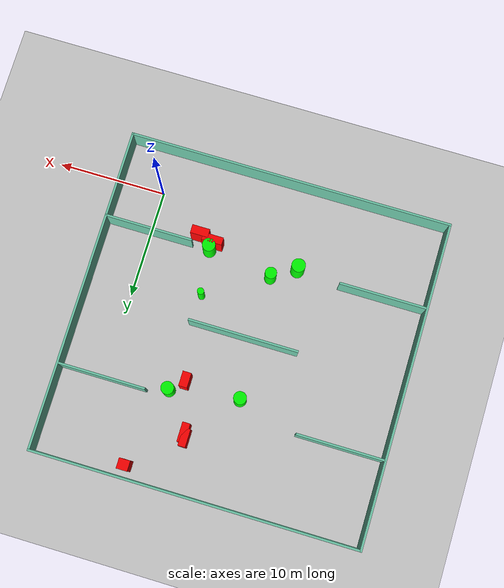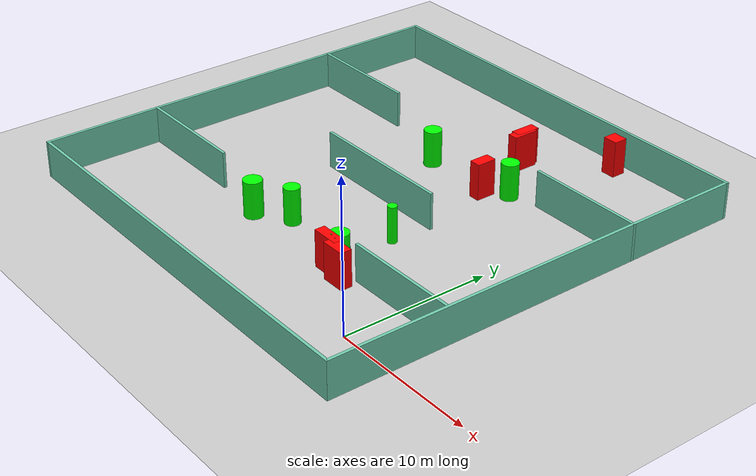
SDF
<sdf version="1.7">
 <world name="default">
  <light name="sun" type="directional">
   <pose>0 0 10 0 -0 0</pose>
   <diffuse>0.8 0.8 0.8 1</diffuse>
   <specular>0.2 0.2 0.2 1</specular>
   <attenuation>
    <range>1000</range>
    <constant>0.9</constant>
    <linear>0.01</linear>
    <quadratic>0.001</quadratic>
   </attenuation>
   <direction>-0.5 0.1 -0.9</direction>
   <spot><inner_angle>0</inner_angle><outer_angle>0</outer_angle><falloff>0</falloff></spot>
  </light>
  <model name="ground_plane">
   <static>1</static>
   <link name="link">
    <collision name="collision">
     <geometry><plane><normal>0 0 1</normal><size>100 100</size></plane></geometry>
     <surface>
      <contact><collide_bitmask>65535</collide_bitmask></contact>
      <friction><ode><mu>100</mu><mu2>50</mu2></ode></friction>
     </surface>
    </collision>
    <visual name="visual">
     <cast_shadows>0</cast_shadows>
     <geometry><plane><normal>0 0 1</normal><size>100 100</size></plane></geometry>
     <material>
      <script><uri>file://media/materials/scripts/gazebo.material</uri><name>Gazebo/Grey</name></script>
     </material>
    </visual>
   </link>
  </model>
  <gravity>0 0 -9.8</gravity>
  <magnetic_field>6e-06 2.3e-05 -4.2e-05</magnetic_field>
  <atmosphere type="adiabatic"/>
  <physics type="ode">
   <max_step_size>0.001</max_step_size>
   <real_time_factor>1</real_time_factor>
   <real_time_update_rate>1000</real_time_update_rate>
  </physics>
  <scene><ambient>0.4 0.4 0.4 1</ambient><background>0.7 0.7 0.7 1</background><shadows>1</shadows></scene>
  <spherical_coordinates>
   <surface_model>EARTH_WGS84</surface_model>
   <latitude_deg>0</latitude_deg>
   <longitude_deg>0</longitude_deg>
   <elevation>0</elevation>
   <heading_deg>0</heading_deg>
  </spherical_coordinates>
  <model name="my_base_walls">
   <link name="Wall_10">
    <collision name="Wall_10_Collision">
     <geometry><box><size>8.2 0.2 2.5</size></box></geometry>
     <pose>0 0 1.25 0 -0 0</pose>
    </collision>
    <visual name="Wall_10_Visual">
     <pose>0 0 1.25 0 -0 0</pose>
     <geometry><box><size>8.2 0.2 2.5</size></box></geometry>
     <material>
      <script><uri>file://media/materials/scripts/gazebo.material</uri><name>Gazebo/Grey</name></script>
      <ambient>0.435294 0.796078 0.67451 1</ambient>
     </material>
     <meta><layer>0</layer></meta>
    </visual>
    <pose>-11 -7 0 0 -0 0</pose>
   </link>
   <link name="Wall_12">
    <collision name="Wall_12_Collision">
     <geometry><box><size>8.2 0.2 2.5</size></box></geometry>
     <pose>0 0 1.25 0 -0 0</pose>
    </collision>
    <visual name="Wall_12_Visual">
     <pose>0 0 1.25 0 -0 0</pose>
     <geometry><box><size>8.2 0.2 2.5</size></box></geometry>
     <material>
      <script><uri>file://media/materials/scripts/gazebo.material</uri><name>Gazebo/Grey</name></script>
      <ambient>0.435294 0.796078 0.67451 1</ambient>
     </material>
     <meta><layer>0</layer></meta>
    </visual>
    <pose>-11 7 0 0 -0 0</pose>
   </link>
   <link name="Wall_14">
    <collision name="Wall_14_Collision">
     <geometry><box><size>8.2 0.2 2.5</size></box></geometry>
     <pose>0 0 1.25 0 -0 0</pose>
    </collision>
    <visual name="Wall_14_Visual">
     <pose>0 0 1.25 0 -0 0</pose>
     <geometry><box><size>8.2 0.2 2.5</size></box></geometry>
     <material>
      <script><uri>file://media/materials/scripts/gazebo.material</uri><name>Gazebo/Grey</name></script>
      <ambient>0.435294 0.796078 0.67451 1</ambient>
     </material>
     <meta><layer>0</layer></meta>
    </visual>
    <pose>11 7 0 0 -0 3.14159</pose>
   </link>
   <link name="Wall_16">
    <collision name="Wall_16_Collision">
     <geometry><box><size>10.2 0.2 2.5</size></box></geometry>
     <pose>0 0 1.25 0 -0 0</pose>
    </collision>
    <visual name="Wall_16_Visual">
     <pose>0 0 1.25 0 -0 0</pose>
     <geometry><box><size>10.2 0.2 2.5</size></box></geometry>
     <material>
      <script><uri>file://media/materials/scripts/gazebo.material</uri><name>Gazebo/Grey</name></script>
      <ambient>0.435294 0.796078 0.67451 1</ambient>
     </material>
     <meta><layer>0</layer></meta>
    </visual>
    <pose>0 0 0 0 -0 3.14159</pose>
   </link>
   <link name="Wall_2">
    <collision name="Wall_2_Collision">
     <geometry><box><size>30.2 0.2 2.5</size></box></geometry>
     <pose>0 0 1.25 0 -0 0</pose>
    </collision>
    <visual name="Wall_2_Visual">
     <pose>0 0 1.25 0 -0 0</pose>
     <geometry><box><size>30.2 0.2 2.5</size></box></geometry>
     <material>
      <script><uri>file://media/materials/scripts/gazebo.material</uri><name>Gazebo/Grey</name></script>
      <ambient>0.435294 0.796078 0.67451 1</ambient>
     </material>
     <meta><layer>0</layer></meta>
    </visual>
    <pose>0 -15 0 0 -0 3.14159</pose>
   </link>
   <link name="Wall_3">
    <collision name="Wall_3_Collision">
     <geometry><box><size>30.2 0.2 2.5</size></box></geometry>
     <pose>0 0 1.25 0 -0 0</pose>
    </collision>
    <visual name="Wall_3_Visual">
     <pose>0 0 1.25 0 -0 0</pose>
     <geometry><box><size>30.2 0.2 2.5</size></box></geometry>
     <material>
      <script><uri>file://media/materials/scripts/gazebo.material</uri><name>Gazebo/Grey</name></script>
      <ambient>0.435294 0.796078 0.67451 1</ambient>
     </material>
     <meta><layer>0</layer></meta>
    </visual>
    <pose>-15 0 0 0 -0 1.5708</pose>
   </link>
   <link name="Wall_4">
    <collision name="Wall_4_Collision">
     <geometry><box><size>30.2 0.2 2.5</size></box></geometry>
     <pose>0 0 1.25 0 -0 0</pose>
    </collision>
    <visual name="Wall_4_Visual">
     <pose>0 0 1.25 0 -0 0</pose>
     <geometry><box><size>30.2 0.2 2.5</size></box></geometry>
     <material>
      <script><uri>file://media/materials/scripts/gazebo.material</uri><name>Gazebo/Grey</name></script>
      <ambient>0.435294 0.796078 0.67451 1</ambient>
     </material>
     <meta><layer>0</layer></meta>
    </visual>
    <pose>0 15 0 0 -0 0</pose>
   </link>
   <link name="Wall_6">
    <collision name="Wall_6_Collision">
     <geometry><box><size>30.2 0.2 2.5</size></box></geometry>
     <pose>0 0 1.25 0 -0 0</pose>
    </collision>
    <visual name="Wall_6_Visual">
     <pose>0 0 1.25 0 -0 0</pose>
     <geometry><box><size>30.2 0.2 2.5</size></box></geometry>
     <material>
      <script><uri>file://media/materials/scripts/gazebo.material</uri><name>Gazebo/Grey</name></script>
      <ambient>0.435294 0.796078 0.67451 1</ambient>
     </material>
     <meta><layer>0</layer></meta>
    </visual>
    <pose>15 0 0 0 -0 1.5708</pose>
   </link>
   <link name="Wall_8">
    <collision name="Wall_8_Collision">
     <geometry><box><size>8.2 0.2 2.5</size></box></geometry>
     <pose>0 0 1.25 0 -0 0</pose>
    </collision>
    <visual name="Wall_8_Visual">
     <pose>0 0 1.25 0 -0 0</pose>
     <geometry><box><size>8.2 0.2 2.5</size></box></geometry>
     <material>
      <script><uri>file://media/materials/scripts/gazebo.material</uri><name>Gazebo/Grey</name></script>
      <ambient>0.435294 0.796078 0.67451 1</ambient>
     </material>
     <meta><layer>0</layer></meta>
    </visual>
    <pose>11 -7 0 0 -0 3.14159</pose>
   </link>
   <static>1</static>
   <pose>-11 11 0 0 -0 0</pose>
  </model>
  <model name="cylinder1">
   <static>1</static>
   <link name="link">
    <inertial>
     <mass>1</mass>
     <inertia><ixx>0.5</ixx><ixy>0</ixy><ixz>0</ixz><iyy>0.5</iyy><iyz>0</iyz><izz>1</izz></inertia>
    </inertial>
    <collision name="collision">
     <geometry><cylinder><radius>0.3116198589776611</radius><length>2.5</length></cylinder></geometry>
    </collision>
    <visual name="visual">
     <geometry><cylinder><radius>0.3116198589776611</radius><length>2.5</length></cylinder></geometry>
     <material>
      <ambient>0 1 0 1</ambient>
      <diffuse>0 1 0 1</diffuse>
      <specular>0.1 0.1 0.1 1</specular>
      <emissive>0 0 0 0</emissive>
     </material>
    </visual>
   </link>
   <pose>-6.223551141278936 8.257085462903362 1.25 0 0 0</pose>
  </model>
  <model name="cylinder2">
   <static>1</static>
   <link name="link">
    <inertial>
     <mass>1</mass>
     <inertia><ixx>0.5</ixx><ixy>0</ixy><ixz>0</ixz><iyy>0.5</iyy><iyz>0</iyz><izz>1</izz></inertia>
    </inertial>
    <collision name="collision">
     <geometry><cylinder><radius>0.5942162932561083</radius><length>2.5</length></cylinder></geometry>
    </collision>
    <visual name="visual">
     <geometry><cylinder><radius>0.5942162932561083</radius><length>2.5</length></cylinder></geometry>
     <material>
      <ambient>0 1 0 1</ambient>
      <diffuse>0 1 0 1</diffuse>
      <specular>0.1 0.1 0.1 1</specular>
      <emissive>0 0 0 0</emissive>
     </material>
    </visual>
   </link>
   <pose>-12.329651185032557 16.395839452301058 1.25 0 0 0</pose>
  </model>
  <model name="cylinder3">
   <static>1</static>
   <link name="link">
    <inertial>
     <mass>1</mass>
     <inertia><ixx>0.5</ixx><ixy>0</ixy><ixz>0</ixz><iyy>0.5</iyy><iyz>0</iyz><izz>1</izz></inertia>
    </inertial>
    <collision name="collision">
     <geometry><cylinder><radius>0.6007378639700138</radius><length>2.5</length></cylinder></geometry>
    </collision>
    <visual name="visual">
     <geometry><cylinder><radius>0.6007378639700138</radius><length>2.5</length></cylinder></geometry>
     <material>
      <ambient>0 1 0 1</ambient>
      <diffuse>0 1 0 1</diffuse>
      <specular>0.1 0.1 0.1 1</specular>
      <emissive>0 0 0 0</emissive>
     </material>
    </visual>
   </link>
   <pose>-5.683524610278802 3.990835477561527 1.25 0 0 0</pose>
  </model>
  <model name="cylinder4">
   <static>1</static>
   <link name="link">
    <inertial>
     <mass>1</mass>
     <inertia><ixx>0.5</ixx><ixy>0</ixy><ixz>0</ixz><iyy>0.5</iyy><iyz>0</iyz><izz>1</izz></inertia>
    </inertial>
    <collision name="collision">
     <geometry><cylinder><radius>0.5403688346007884</radius><length>2.5</length></cylinder></geometry>
    </collision>
    <visual name="visual">
     <geometry><cylinder><radius>0.5403688346007884</radius><length>2.5</length></cylinder></geometry>
     <material>
      <ambient>0 1 0 1</ambient>
      <diffuse>0 1 0 1</diffuse>
      <specular>0.1 0.1 0.1 1</specular>
      <emissive>0 0 0 0</emissive>
     </material>
    </visual>
   </link>
   <pose>-11.75619386382142 4.870874731056776 1.25 0 0 0</pose>
  </model>
  <model name="cylinder5">
   <static>1</static>
   <link name="link">
    <inertial>
     <mass>1</mass>
     <inertia><ixx>0.5</ixx><ixy>0</ixy><ixz>0</ixz><iyy>0.5</iyy><iyz>0</iyz><izz>1</izz></inertia>
    </inertial>
    <collision name="collision">
     <geometry><cylinder><radius>0.631705391877123</radius><length>2.5</length></cylinder></geometry>
    </collision>
    <visual name="visual">
     <geometry><cylinder><radius>0.631705391877123</radius><length>2.5</length></cylinder></geometry>
     <material>
      <ambient>0 1 0 1</ambient>
      <diffuse>0 1 0 1</diffuse>
      <specular>0.1 0.1 0.1 1</specular>
      <emissive>0 0 0 0</emissive>
     </material>
    </visual>
   </link>
   <pose>-13.940704617952974 3.5012123163412188 1.25 0 0 0</pose>
  </model>
  <model name="cylinder6">
   <static>1</static>
   <link name="link">
    <inertial>
     <mass>1</mass>
     <inertia><ixx>0.5</ixx><ixy>0</ixy><ixz>0</ixz><iyy>0.5</iyy><iyz>0</iyz><izz>1</izz></inertia>
    </inertial>
    <collision name="collision">
     <geometry><cylinder><radius>0.5913010400013365</radius><length>2.5</length></cylinder></geometry>
    </collision>
    <visual name="visual">
     <geometry><cylinder><radius>0.5913010400013365</radius><length>2.5</length></cylinder></geometry>
     <material>
      <ambient>0 1 0 1</ambient>
      <diffuse>0 1 0 1</diffuse>
      <specular>0.1 0.1 0.1 1</specular>
      <emissive>0 0 0 0</emissive>
     </material>
    </visual>
   </link>
   <pose>-5.959105042331533 17.366593164935484 1.25 0 0 0</pose>
  </model>
  <model name="box1">
   <static>1</static>
   <link name="link">
    <inertial>
     <mass>1</mass>
     <inertia><ixx>0.083</ixx><ixy>0</ixy><ixz>0</ixz><iyy>0.083</iyy><iyz>0</iyz><izz>0.083</izz></inertia>
    </inertial>
    <collision name="collision">
     <geometry><box><size>1.9065843290954048 0.7010026608236404 2.5</size></box></geometry>
    </collision>
    <visual name="visual">
     <geometry><box><size>1.9065843290954048 0.7010026608236404 2.5</size></box></geometry>
     <material>
      <ambient>1 0 0 1</ambient>
      <diffuse>1 0 0 1</diffuse>
      <specular>0.1 0.1 0.1 1</specular>
      <emissive>0 0 0 0</emissive>
     </material>
    </visual>
    <sensor name="my_contact" type="contact">
     <contact><collision>box_collision</collision><topic>__default_topic__</topic></contact>
    </sensor>
   </link>
   <pose>-5.837900039163074 3.354970845158711 1.25 0 0 0</pose>
  </model>
  <model name="box2">
   <static>1</static>
   <link name="link">
    <inertial>
     <mass>1</mass>
     <inertia><ixx>0.083</ixx><ixy>0</ixy><ixz>0</ixz><iyy>0.083</iyy><iyz>0</iyz><izz>0.083</izz></inertia>
    </inertial>
    <collision name="collision">
     <geometry><box><size>1.0170685220026368 0.9613226115155101 2.5</size></box></geometry>
    </collision>
    <visual name="visual">
     <geometry><box><size>1.0170685220026368 0.9613226115155101 2.5</size></box></geometry>
     <material>
      <ambient>1 0 0 1</ambient>
      <diffuse>1 0 0 1</diffuse>
      <specular>0.1 0.1 0.1 1</specular>
      <emissive>0 0 0 0</emissive>
     </material>
    </visual>
    <sensor name="my_contact" type="contact">
     <contact><collision>box_collision</collision><topic>__default_topic__</topic></contact>
    </sensor>
   </link>
   <pose>-4.281667578677563 24.834701404859278 1.25 0 0 0</pose>
  </model>
  <model name="box3">
   <static>1</static>
   <link name="link">
    <inertial>
     <mass>1</mass>
     <inertia><ixx>0.083</ixx><ixy>0</ixy><ixz>0</ixz><iyy>0.083</iyy><iyz>0</iyz><izz>0.083</izz></inertia>
    </inertial>
    <collision name="collision">
     <geometry><box><size>1.6405424334951362 0.7768454082398029 2.5</size></box></geometry>
    </collision>
    <visual name="visual">
     <geometry><box><size>1.6405424334951362 0.7768454082398029 2.5</size></box></geometry>
     <material>
      <ambient>1 0 0 1</ambient>
      <diffuse>1 0 0 1</diffuse>
      <specular>0.1 0.1 0.1 1</specular>
      <emissive>0 0 0 0</emissive>
     </material>
    </visual>
    <sensor name="my_contact" type="contact">
     <contact><collision>box_collision</collision><topic>__default_topic__</topic></contact>
    </sensor>
   </link>
   <pose>-4.567360467382748 2.9957638879953006 1.25 0 0 0</pose>
  </model>
  <model name="box4">
   <static>1</static>
   <link name="link">
    <inertial>
     <mass>1</mass>
     <inertia><ixx>0.083</ixx><ixy>0</ixy><ixz>0</ixz><iyy>0.083</iyy><iyz>0</iyz><izz>0.083</izz></inertia>
    </inertial>
    <collision name="collision">
     <geometry><box><size>0.7018132489396871 1.8015957936196267 2.5</size></box></geometry>
    </collision>
    <visual name="visual">
     <geometry><box><size>0.7018132489396871 1.8015957936196267 2.5</size></box></geometry>
     <material>
      <ambient>1 0 0 1</ambient>
      <diffuse>1 0 0 1</diffuse>
      <specular>0.1 0.1 0.1 1</specular>
      <emissive>0 0 0 0</emissive>
     </material>
    </visual>
    <sensor name="my_contact" type="contact">
     <contact><collision>box_collision</collision><topic>__default_topic__</topic></contact>
    </sensor>
   </link>
   <pose>-8.47350322139533 20.70050693151231 1.25 0 0 0</pose>
  </model>
  <model name="box5">
   <static>1</static>
   <link name="link">
    <inertial>
     <mass>1</mass>
     <inertia><ixx>0.083</ixx><ixy>0</ixy><ixz>0</ixz><iyy>0.083</iyy><iyz>0</iyz><izz>0.083</izz></inertia>
    </inertial>
    <collision name="collision">
     <geometry><box><size>0.7826974102926989 1.3623889312781527 2.5</size></box></geometry>
    </collision>
    <visual name="visual">
     <geometry><box><size>0.7826974102926989 1.3623889312781527 2.5</size></box></geometry>
     <material>
      <ambient>1 0 0 1</ambient>
      <diffuse>1 0 0 1</diffuse>
      <specular>0.1 0.1 0.1 1</specular>
      <emissive>0 0 0 0</emissive>
     </material>
    </visual>
    <sensor name="my_contact" type="contact">
     <contact><collision>box_collision</collision><topic>__default_topic__</topic></contact>
    </sensor>
   </link>
   <pose>-7.223386554509851 16.211200079322655 1.25 0 0 0</pose>
  </model>
  <model name="box6">
   <static>1</static>
   <link name="link">
    <inertial>
     <mass>1</mass>
     <inertia><ixx>0.083</ixx><ixy>0</ixy><ixz>0</ixz><iyy>0.083</iyy><iyz>0</iyz><izz>0.083</izz></inertia>
    </inertial>
    <collision name="collision">
     <geometry><box><size>0.6813595520412801 1.6565525794198916 2.5</size></box></geometry>
    </collision>
    <visual name="visual">
     <geometry><box><size>0.6813595520412801 1.6565525794198916 2.5</size></box></geometry>
     <material>
      <ambient>1 0 0 1</ambient>
      <diffuse>1 0 0 1</diffuse>
      <specular>0.1 0.1 0.1 1</specular>
      <emissive>0 0 0 0</emissive>
     </material>
    </visual>
    <sensor name="my_contact" type="contact">
     <contact><collision>box_collision</collision><topic>__default_topic__</topic></contact>
    </sensor>
   </link>
   <pose>-8.650662667863498 21.074025082500384 1.25 0 0 0</pose>
  </model>
 </world>
</sdf>
